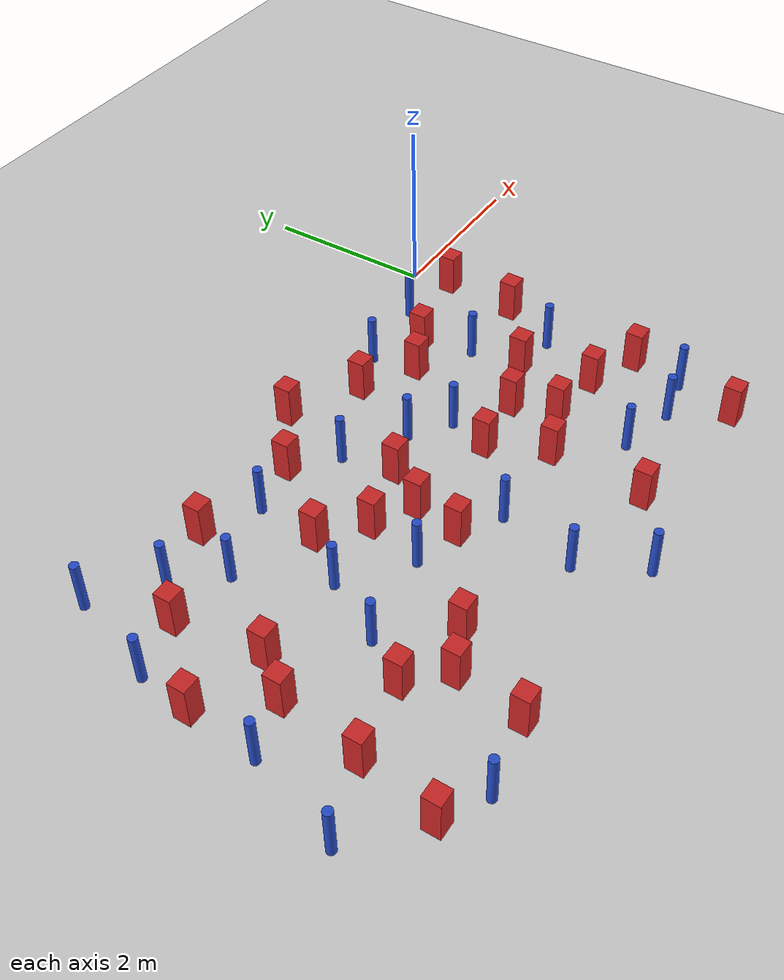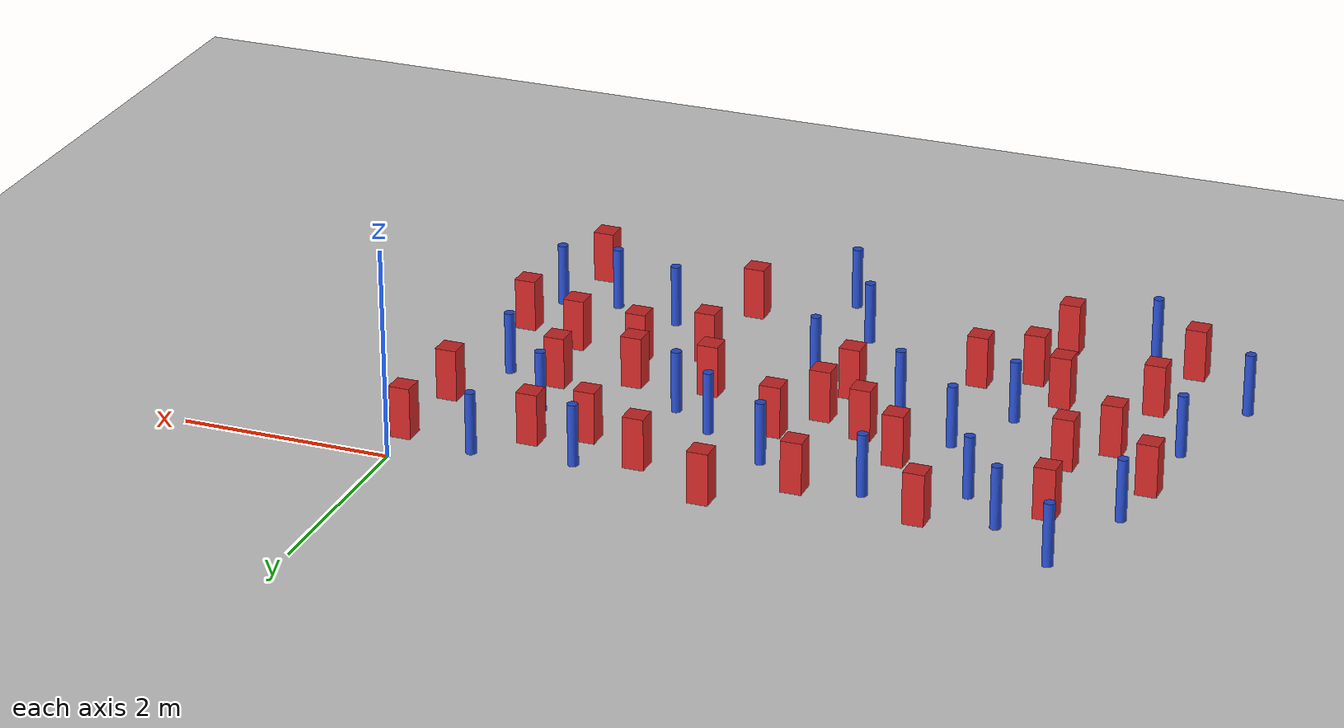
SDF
<sdf version="1.6">
 <world name="default">
  <model name="ground_plane">
   <static>1</static>
   <link name="link">
    <collision name="collision">
     <geometry><plane><normal>0 0 1</normal><size>100 100</size></plane></geometry>
     <surface><friction><ode><mu>100</mu><mu2>50</mu2></ode></friction></surface>
    </collision>
    <visual name="visual">
     <cast_shadows>0</cast_shadows>
     <geometry><plane><normal>0 0 1</normal><size>100 100</size></plane></geometry>
     <material>
      <ambient>1.0 1.0 1.0 1.0</ambient>
      <diffuse>0.8 0.8 0.8 1.0</diffuse>
      <specular>0.01 0.01 0.01 1.000000</specular>
     </material>
    </visual>
   </link>
  </model>
  <model name="NamedLocations">
   <static>true</static>
   <link name="DefaultStart"><pose>8.5 0 0 0 0 3.14</pose></link>
  </model>
  <model name="pole_obstacle1">
   <static>true</static>
   <pose>-3.19911717233 -3.85749164379 -9.47619616065e-06 5.49618799737e-07 2.36310414067e-07 -1.55090534797e-07</pose>
   <link name="link">
    <pose>0 0 0.3 0 -0 0</pose>
    <inertial>
     <mass>1</mass>
     <inertia><ixx>0.145833</ixx><ixy>0</ixy><ixz>0</ixz><iyy>0.145833</iyy><iyz>0</iyz><izz>0.125</izz></inertia>
    </inertial>
    <collision name="collision">
     <geometry><cylinder><radius>0.05</radius><length>.6</length></cylinder></geometry>
    </collision>
    <visual name="visual">
     <geometry><cylinder><radius>0.05</radius><length>.6</length></cylinder></geometry>
     <material>
      <script><name>Gazebo/Blue</name><uri>file://media/materials/scripts/gazebo.material</uri></script>
     </material>
    </visual>
   </link>
  </model>
  <model name="square_post_obstacle28">
   <static>true</static>
   <pose>-0.0765673904585 -3.0352281783 -6.11067671241e-07 -5.50515727128e-06 -8.79689657224e-07 2.37013304536e-05</pose>
   <link name="link">
    <pose>0 0 0.25 0 -0 0</pose>
    <inertial>
     <mass>100</mass>
     <inertia>
      <ixx>0.166667</ixx>
      <ixy>0</ixy>
      <ixz>0</ixz>
      <iyy>0.166667</iyy>
      <iyz>0</iyz>
      <izz>0.166667</izz>
     </inertia>
    </inertial>
    <collision name="collision"><geometry><box><size>.2 .2 .5</size></box></geometry></collision>
    <visual name="visual">
     <geometry><box><size>.2 .2 .5</size></box></geometry>
     <material>
      <script><name>Gazebo/Red</name><uri>file://media/materials/scripts/gazebo.material</uri></script>
     </material>
    </visual>
   </link>
  </model>
  <model name="pole_obstacle39">
   <static>true</static>
   <pose>-0.702254688312 -3.73534514934 -9.47619616065e-06 5.49618799737e-07 2.36310414066e-07 -1.55090534797e-07</pose>
   <link name="link">
    <pose>0 0 0.3 0 -0 0</pose>
    <inertial>
     <mass>1</mass>
     <inertia><ixx>0.145833</ixx><ixy>0</ixy><ixz>0</ixz><iyy>0.145833</iyy><iyz>0</iyz><izz>0.125</izz></inertia>
    </inertial>
    <collision name="collision">
     <geometry><cylinder><radius>0.05</radius><length>.6</length></cylinder></geometry>
    </collision>
    <visual name="visual">
     <geometry><cylinder><radius>0.05</radius><length>.6</length></cylinder></geometry>
     <material>
      <script><name>Gazebo/Blue</name><uri>file://media/materials/scripts/gazebo.material</uri></script>
     </material>
    </visual>
   </link>
  </model>
  <model name="square_post_obstacle36">
   <static>true</static>
   <pose>-6.12231730067 -3.36543275343 -6.11067671241e-07 -5.50515727128e-06 -8.79689657224e-07 2.37013304536e-05</pose>
   <link name="link">
    <pose>0 0 0.25 0 -0 0</pose>
    <inertial>
     <mass>100</mass>
     <inertia>
      <ixx>0.166667</ixx>
      <ixy>0</ixy>
      <ixz>0</ixz>
      <iyy>0.166667</iyy>
      <iyz>0</iyz>
      <izz>0.166667</izz>
     </inertia>
    </inertial>
    <collision name="collision"><geometry><box><size>.2 .2 .5</size></box></geometry></collision>
    <visual name="visual">
     <geometry><box><size>.2 .2 .5</size></box></geometry>
     <material>
      <script><name>Gazebo/Red</name><uri>file://media/materials/scripts/gazebo.material</uri></script>
     </material>
    </visual>
   </link>
  </model>
  <model name="pole_obstacle51">
   <static>true</static>
   <pose>-2.48263366427 -1.49886465993 -9.47619616065e-06 5.49618799737e-07 2.36310414072e-07 -1.55090534793e-07</pose>
   <link name="link">
    <pose>0 0 0.3 0 -0 0</pose>
    <inertial>
     <mass>1</mass>
     <inertia><ixx>0.145833</ixx><ixy>0</ixy><ixz>0</ixz><iyy>0.145833</iyy><iyz>0</iyz><izz>0.125</izz></inertia>
    </inertial>
    <collision name="collision">
     <geometry><cylinder><radius>0.05</radius><length>.6</length></cylinder></geometry>
    </collision>
    <visual name="visual">
     <geometry><cylinder><radius>0.05</radius><length>.6</length></cylinder></geometry>
     <material>
      <script><name>Gazebo/Blue</name><uri>file://media/materials/scripts/gazebo.material</uri></script>
     </material>
    </visual>
   </link>
  </model>
  <model name="pole_obstacle53">
   <static>true</static>
   <pose>-0.175099441439 -3.63670698997 -9.47619616065e-06 5.49618799738e-07 2.36310414068e-07 -1.55090534794e-07</pose>
   <link name="link">
    <pose>0 0 0.3 0 -0 0</pose>
    <inertial>
     <mass>1</mass>
     <inertia><ixx>0.145833</ixx><ixy>0</ixy><ixz>0</ixz><iyy>0.145833</iyy><iyz>0</iyz><izz>0.125</izz></inertia>
    </inertial>
    <collision name="collision">
     <geometry><cylinder><radius>0.05</radius><length>.6</length></cylinder></geometry>
    </collision>
    <visual name="visual">
     <geometry><cylinder><radius>0.05</radius><length>.6</length></cylinder></geometry>
     <material>
      <script><name>Gazebo/Blue</name><uri>file://media/materials/scripts/gazebo.material</uri></script>
     </material>
    </visual>
   </link>
  </model>
  <model name="pole_obstacle59">
   <static>true</static>
   <pose>-3.13419459862 -1.08942713452 -9.47619616065e-06 5.49618799737e-07 2.3631041403e-07 -1.5509053482e-07</pose>
   <link name="link">
    <pose>0 0 0.3 0 -0 0</pose>
    <inertial>
     <mass>1</mass>
     <inertia><ixx>0.145833</ixx><ixy>0</ixy><ixz>0</ixz><iyy>0.145833</iyy><iyz>0</iyz><izz>0.125</izz></inertia>
    </inertial>
    <collision name="collision">
     <geometry><cylinder><radius>0.05</radius><length>.6</length></cylinder></geometry>
    </collision>
    <visual name="visual">
     <geometry><cylinder><radius>0.05</radius><length>.6</length></cylinder></geometry>
     <material>
      <script><name>Gazebo/Blue</name><uri>file://media/materials/scripts/gazebo.material</uri></script>
     </material>
    </visual>
   </link>
  </model>
  <model name="pole_obstacle62">
   <static>true</static>
   <pose>-2.97303971889 -2.97368867425 -9.47619616065e-06 5.49618799737e-07 2.36310414051e-07 -1.55090534807e-07</pose>
   <link name="link">
    <pose>0 0 0.3 0 -0 0</pose>
    <inertial>
     <mass>1</mass>
     <inertia><ixx>0.145833</ixx><ixy>0</ixy><ixz>0</ixz><iyy>0.145833</iyy><iyz>0</iyz><izz>0.125</izz></inertia>
    </inertial>
    <collision name="collision">
     <geometry><cylinder><radius>0.05</radius><length>.6</length></cylinder></geometry>
    </collision>
    <visual name="visual">
     <geometry><cylinder><radius>0.05</radius><length>.6</length></cylinder></geometry>
     <material>
      <script><name>Gazebo/Blue</name><uri>file://media/materials/scripts/gazebo.material</uri></script>
     </material>
    </visual>
   </link>
  </model>
  <model name="square_post_obstacle48">
   <static>true</static>
   <pose>-5.2789431637 -3.21383646122 -6.11067671241e-07 -5.50515727128e-06 -8.79689657224e-07 2.37013304536e-05</pose>
   <link name="link">
    <pose>0 0 0.25 0 -0 0</pose>
    <inertial>
     <mass>100</mass>
     <inertia>
      <ixx>0.166667</ixx>
      <ixy>0</ixy>
      <ixz>0</ixz>
      <iyy>0.166667</iyy>
      <iyz>0</iyz>
      <izz>0.166667</izz>
     </inertia>
    </inertial>
    <collision name="collision"><geometry><box><size>.2 .2 .5</size></box></geometry></collision>
    <visual name="visual">
     <geometry><box><size>.2 .2 .5</size></box></geometry>
     <material>
      <script><name>Gazebo/Red</name><uri>file://media/materials/scripts/gazebo.material</uri></script>
     </material>
    </visual>
   </link>
  </model>
  <model name="square_post_obstacle50">
   <static>true</static>
   <pose>-3.33939421708 -2.16805434983 -6.11067671241e-07 -5.50515727128e-06 -8.79689657224e-07 2.37013304536e-05</pose>
   <link name="link">
    <pose>0 0 0.25 0 -0 0</pose>
    <inertial>
     <mass>100</mass>
     <inertia>
      <ixx>0.166667</ixx>
      <ixy>0</ixy>
      <ixz>0</ixz>
      <iyy>0.166667</iyy>
      <iyz>0</iyz>
      <izz>0.166667</izz>
     </inertia>
    </inertial>
    <collision name="collision"><geometry><box><size>.2 .2 .5</size></box></geometry></collision>
    <visual name="visual">
     <geometry><box><size>.2 .2 .5</size></box></geometry>
     <material>
      <script><name>Gazebo/Red</name><uri>file://media/materials/scripts/gazebo.material</uri></script>
     </material>
    </visual>
   </link>
  </model>
  <model name="square_post_obstacle54">
   <static>true</static>
   <pose>-1.99470783753 -4.05899815633 -6.11067671241e-07 -5.50515727128e-06 -8.79689657224e-07 2.37013304536e-05</pose>
   <link name="link">
    <pose>0 0 0.25 0 -0 0</pose>
    <inertial>
     <mass>100</mass>
     <inertia>
      <ixx>0.166667</ixx>
      <ixy>0</ixy>
      <ixz>0</ixz>
      <iyy>0.166667</iyy>
      <iyz>0</iyz>
      <izz>0.166667</izz>
     </inertia>
    </inertial>
    <collision name="collision"><geometry><box><size>.2 .2 .5</size></box></geometry></collision>
    <visual name="visual">
     <geometry><box><size>.2 .2 .5</size></box></geometry>
     <material>
      <script><name>Gazebo/Red</name><uri>file://media/materials/scripts/gazebo.material</uri></script>
     </material>
    </visual>
   </link>
  </model>
  <model name="square_post_obstacle56">
   <static>true</static>
   <pose>-6.50431395539 -1.78588059639 -6.11067671241e-07 -5.50515727128e-06 -8.79689657224e-07 2.37013304536e-05</pose>
   <link name="link">
    <pose>0 0 0.25 0 -0 0</pose>
    <inertial>
     <mass>100</mass>
     <inertia>
      <ixx>0.166667</ixx>
      <ixy>0</ixy>
      <ixz>0</ixz>
      <iyy>0.166667</iyy>
      <iyz>0</iyz>
      <izz>0.166667</izz>
     </inertia>
    </inertial>
    <collision name="collision"><geometry><box><size>.2 .2 .5</size></box></geometry></collision>
    <visual name="visual">
     <geometry><box><size>.2 .2 .5</size></box></geometry>
     <material>
      <script><name>Gazebo/Red</name><uri>file://media/materials/scripts/gazebo.material</uri></script>
     </material>
    </visual>
   </link>
  </model>
  <model name="square_post_obstacle57">
   <static>true</static>
   <pose>-2.20268461764 -2.29510537021 -6.11067671241e-07 -5.50515727128e-06 -8.79689657224e-07 2.37013304536e-05</pose>
   <link name="link">
    <pose>0 0 0.25 0 -0 0</pose>
    <inertial>
     <mass>100</mass>
     <inertia>
      <ixx>0.166667</ixx>
      <ixy>0</ixy>
      <ixz>0</ixz>
      <iyy>0.166667</iyy>
      <iyz>0</iyz>
      <izz>0.166667</izz>
     </inertia>
    </inertial>
    <collision name="collision"><geometry><box><size>.2 .2 .5</size></box></geometry></collision>
    <visual name="visual">
     <geometry><box><size>.2 .2 .5</size></box></geometry>
     <material>
      <script><name>Gazebo/Red</name><uri>file://media/materials/scripts/gazebo.material</uri></script>
     </material>
    </visual>
   </link>
  </model>
  <model name="pole_obstacle71">
   <static>true</static>
   <pose>-1.3604966043 -3.56582772168 -9.47619616065e-06 5.49618799737e-07 2.36310414062e-07 -1.55090534798e-07</pose>
   <link name="link">
    <pose>0 0 0.3 0 -0 0</pose>
    <inertial>
     <mass>1</mass>
     <inertia><ixx>0.145833</ixx><ixy>0</ixy><ixz>0</ixz><iyy>0.145833</iyy><iyz>0</iyz><izz>0.125</izz></inertia>
    </inertial>
    <collision name="collision">
     <geometry><cylinder><radius>0.05</radius><length>.6</length></cylinder></geometry>
    </collision>
    <visual name="visual">
     <geometry><cylinder><radius>0.05</radius><length>.6</length></cylinder></geometry>
     <material>
      <script><name>Gazebo/Blue</name><uri>file://media/materials/scripts/gazebo.material</uri></script>
     </material>
    </visual>
   </link>
  </model>
  <model name="square_post_obstacle63">
   <static>true</static>
   <pose>-2.12990914501 -0.656591872403 -6.11067671241e-07 -5.50515727128e-06 -8.79689657224e-07 2.37013304536e-05</pose>
   <link name="link">
    <pose>0 0 0.25 0 -0 0</pose>
    <inertial>
     <mass>100</mass>
     <inertia>
      <ixx>0.166667</ixx>
      <ixy>0</ixy>
      <ixz>0</ixz>
      <iyy>0.166667</iyy>
      <iyz>0</iyz>
      <izz>0.166667</izz>
     </inertia>
    </inertial>
    <collision name="collision"><geometry><box><size>.2 .2 .5</size></box></geometry></collision>
    <visual name="visual">
     <geometry><box><size>.2 .2 .5</size></box></geometry>
     <material>
      <script><name>Gazebo/Red</name><uri>file://media/materials/scripts/gazebo.material</uri></script>
     </material>
    </visual>
   </link>
  </model>
  <model name="square_post_obstacle65">
   <static>true</static>
   <pose>-4.43909895062 -3.37051750429 -6.11067671241e-07 -5.50515727128e-06 -8.79689657224e-07 2.37013304536e-05</pose>
   <link name="link">
    <pose>0 0 0.25 0 -0 0</pose>
    <inertial>
     <mass>100</mass>
     <inertia>
      <ixx>0.166667</ixx>
      <ixy>0</ixy>
      <ixz>0</ixz>
      <iyy>0.166667</iyy>
      <iyz>0</iyz>
      <izz>0.166667</izz>
     </inertia>
    </inertial>
    <collision name="collision"><geometry><box><size>.2 .2 .5</size></box></geometry></collision>
    <visual name="visual">
     <geometry><box><size>.2 .2 .5</size></box></geometry>
     <material>
      <script><name>Gazebo/Red</name><uri>file://media/materials/scripts/gazebo.material</uri></script>
     </material>
    </visual>
   </link>
  </model>
  <model name="pole_obstacle93">
   <static>true</static>
   <pose>-4.60861516715 -2.02784647818 -9.47619616065e-06 5.49618799737e-07 2.36310414063e-07 -1.55090534798e-07</pose>
   <link name="link">
    <pose>0 0 0.3 0 -0 0</pose>
    <inertial>
     <mass>1</mass>
     <inertia><ixx>0.145833</ixx><ixy>0</ixy><ixz>0</ixz><iyy>0.145833</iyy><iyz>0</iyz><izz>0.125</izz></inertia>
    </inertial>
    <collision name="collision">
     <geometry><cylinder><radius>0.05</radius><length>.6</length></cylinder></geometry>
    </collision>
    <visual name="visual">
     <geometry><cylinder><radius>0.05</radius><length>.6</length></cylinder></geometry>
     <material>
      <script><name>Gazebo/Blue</name><uri>file://media/materials/scripts/gazebo.material</uri></script>
     </material>
    </visual>
   </link>
  </model>
  <model name="pole_obstacle95">
   <static>true</static>
   <pose>-4.98050670541 -2.71557921643 -9.47619616065e-06 5.49618799738e-07 2.36310414051e-07 -1.55090534805e-07</pose>
   <link name="link">
    <pose>0 0 0.3 0 -0 0</pose>
    <inertial>
     <mass>1</mass>
     <inertia><ixx>0.145833</ixx><ixy>0</ixy><ixz>0</ixz><iyy>0.145833</iyy><iyz>0</iyz><izz>0.125</izz></inertia>
    </inertial>
    <collision name="collision">
     <geometry><cylinder><radius>0.05</radius><length>.6</length></cylinder></geometry>
    </collision>
    <visual name="visual">
     <geometry><cylinder><radius>0.05</radius><length>.6</length></cylinder></geometry>
     <material>
      <script><name>Gazebo/Blue</name><uri>file://media/materials/scripts/gazebo.material</uri></script>
     </material>
    </visual>
   </link>
  </model>
  <model name="square_post_obstacle91">
   <static>true</static>
   <pose>-6.26693419469 -4.23225692589 -6.11067671241e-07 -5.50515727128e-06 -8.79689657224e-07 2.37013304536e-05</pose>
   <link name="link">
    <pose>0 0 0.25 0 -0 0</pose>
    <inertial>
     <mass>100</mass>
     <inertia>
      <ixx>0.166667</ixx>
      <ixy>0</ixy>
      <ixz>0</ixz>
      <iyy>0.166667</iyy>
      <iyz>0</iyz>
      <izz>0.166667</izz>
     </inertia>
    </inertial>
    <collision name="collision"><geometry><box><size>.2 .2 .5</size></box></geometry></collision>
    <visual name="visual">
     <geometry><box><size>.2 .2 .5</size></box></geometry>
     <material>
      <script><name>Gazebo/Red</name><uri>file://media/materials/scripts/gazebo.material</uri></script>
     </material>
    </visual>
   </link>
  </model>
  <model name="pole_obstacle101">
   <static>true</static>
   <pose>-0.906125554442 -1.36196804344 -9.47619616065e-06 5.49618799738e-07 2.36310414061e-07 -1.55090534801e-07</pose>
   <link name="link">
    <pose>0 0 0.3 0 -0 0</pose>
    <inertial>
     <mass>1</mass>
     <inertia><ixx>0.145833</ixx><ixy>0</ixy><ixz>0</ixz><iyy>0.145833</iyy><iyz>0</iyz><izz>0.125</izz></inertia>
    </inertial>
    <collision name="collision">
     <geometry><cylinder><radius>0.05</radius><length>.6</length></cylinder></geometry>
    </collision>
    <visual name="visual">
     <geometry><cylinder><radius>0.05</radius><length>.6</length></cylinder></geometry>
     <material>
      <script><name>Gazebo/Blue</name><uri>file://media/materials/scripts/gazebo.material</uri></script>
     </material>
    </visual>
   </link>
  </model>
  <model name="pole_obstacle102">
   <static>true</static>
   <pose>-2.05232454999 -1.81158251373 -9.47619616065e-06 5.49618799737e-07 2.36310414072e-07 -1.55090534793e-07</pose>
   <link name="link">
    <pose>0 0 0.3 0 -0 0</pose>
    <inertial>
     <mass>1</mass>
     <inertia><ixx>0.145833</ixx><ixy>0</ixy><ixz>0</ixz><iyy>0.145833</iyy><iyz>0</iyz><izz>0.125</izz></inertia>
    </inertial>
    <collision name="collision">
     <geometry><cylinder><radius>0.05</radius><length>.6</length></cylinder></geometry>
    </collision>
    <visual name="visual">
     <geometry><cylinder><radius>0.05</radius><length>.6</length></cylinder></geometry>
     <material>
      <script><name>Gazebo/Blue</name><uri>file://media/materials/scripts/gazebo.material</uri></script>
     </material>
    </visual>
   </link>
  </model>
  <model name="square_post_obstacle101">
   <static>true</static>
   <pose>-0.00956908854837 -1.3630179235 -6.11067671241e-07 -5.50515727128e-06 -8.79689657224e-07 2.37013304536e-05</pose>
   <link name="link">
    <pose>0 0 0.25 0 -0 0</pose>
    <inertial>
     <mass>100</mass>
     <inertia>
      <ixx>0.166667</ixx>
      <ixy>0</ixy>
      <ixz>0</ixz>
      <iyy>0.166667</iyy>
      <iyz>0</iyz>
      <izz>0.166667</izz>
     </inertia>
    </inertial>
    <collision name="collision"><geometry><box><size>.2 .2 .5</size></box></geometry></collision>
    <visual name="visual">
     <geometry><box><size>.2 .2 .5</size></box></geometry>
     <material>
      <script><name>Gazebo/Red</name><uri>file://media/materials/scripts/gazebo.material</uri></script>
     </material>
    </visual>
   </link>
  </model>
  <model name="square_post_obstacle111">
   <static>true</static>
   <pose>-5.6695432048 -2.00963299749 -6.11067671241e-07 -5.50515727128e-06 -8.79689657224e-07 2.37013304536e-05</pose>
   <link name="link">
    <pose>0 0 0.25 0 -0 0</pose>
    <inertial>
     <mass>100</mass>
     <inertia>
      <ixx>0.166667</ixx>
      <ixy>0</ixy>
      <ixz>0</ixz>
      <iyy>0.166667</iyy>
      <iyz>0</iyz>
      <izz>0.166667</izz>
     </inertia>
    </inertial>
    <collision name="collision"><geometry><box><size>.2 .2 .5</size></box></geometry></collision>
    <visual name="visual">
     <geometry><box><size>.2 .2 .5</size></box></geometry>
     <material>
      <script><name>Gazebo/Red</name><uri>file://media/materials/scripts/gazebo.material</uri></script>
     </material>
    </visual>
   </link>
  </model>
  <model name="square_post_obstacle112">
   <static>true</static>
   <pose>0.0521442033114 -0.484607873378 -6.11067671241e-07 -5.50515727128e-06 -8.79689657224e-07 2.37013304536e-05</pose>
   <link name="link">
    <pose>0 0 0.25 0 -0 0</pose>
    <inertial>
     <mass>100</mass>
     <inertia>
      <ixx>0.166667</ixx>
      <ixy>0</ixy>
      <ixz>0</ixz>
      <iyy>0.166667</iyy>
      <iyz>0</iyz>
      <izz>0.166667</izz>
     </inertia>
    </inertial>
    <collision name="collision"><geometry><box><size>.2 .2 .5</size></box></geometry></collision>
    <visual name="visual">
     <geometry><box><size>.2 .2 .5</size></box></geometry>
     <material>
      <script><name>Gazebo/Red</name><uri>file://media/materials/scripts/gazebo.material</uri></script>
     </material>
    </visual>
   </link>
  </model>
  <model name="square_post_obstacle118">
   <static>true</static>
   <pose>-1.92234730934 -2.95369206804 -6.11067671241e-07 -5.50515727128e-06 -8.79689657224e-07 2.37013304536e-05</pose>
   <link name="link">
    <pose>0 0 0.25 0 -0 0</pose>
    <inertial>
     <mass>100</mass>
     <inertia>
      <ixx>0.166667</ixx>
      <ixy>0</ixy>
      <ixz>0</ixz>
      <iyy>0.166667</iyy>
      <iyz>0</iyz>
      <izz>0.166667</izz>
     </inertia>
    </inertial>
    <collision name="collision"><geometry><box><size>.2 .2 .5</size></box></geometry></collision>
    <visual name="visual">
     <geometry><box><size>.2 .2 .5</size></box></geometry>
     <material>
      <script><name>Gazebo/Red</name><uri>file://media/materials/scripts/gazebo.material</uri></script>
     </material>
    </visual>
   </link>
  </model>
  <model name="pole_obstacle118">
   <static>true</static>
   <pose>-5.46044756523 -0.648077877743 -9.47619616065e-06 5.49618799737e-07 2.36310414061e-07 -1.550905348e-07</pose>
   <link name="link">
    <pose>0 0 0.3 0 -0 0</pose>
    <inertial>
     <mass>1</mass>
     <inertia><ixx>0.145833</ixx><ixy>0</ixy><ixz>0</ixz><iyy>0.145833</iyy><iyz>0</iyz><izz>0.125</izz></inertia>
    </inertial>
    <collision name="collision">
     <geometry><cylinder><radius>0.05</radius><length>.6</length></cylinder></geometry>
    </collision>
    <visual name="visual">
     <geometry><cylinder><radius>0.05</radius><length>.6</length></cylinder></geometry>
     <material>
      <script><name>Gazebo/Blue</name><uri>file://media/materials/scripts/gazebo.material</uri></script>
     </material>
    </visual>
   </link>
  </model>
  <model name="square_post_obstacle119">
   <static>true</static>
   <pose>-4.24734267214 -1.53987809957 -6.11067671241e-07 -5.50515727128e-06 -8.79689657224e-07 2.37013304536e-05</pose>
   <link name="link">
    <pose>0 0 0.25 0 -0 0</pose>
    <inertial>
     <mass>100</mass>
     <inertia>
      <ixx>0.166667</ixx>
      <ixy>0</ixy>
      <ixz>0</ixz>
      <iyy>0.166667</iyy>
      <iyz>0</iyz>
      <izz>0.166667</izz>
     </inertia>
    </inertial>
    <collision name="collision"><geometry><box><size>.2 .2 .5</size></box></geometry></collision>
    <visual name="visual">
     <geometry><box><size>.2 .2 .5</size></box></geometry>
     <material>
      <script><name>Gazebo/Red</name><uri>file://media/materials/scripts/gazebo.material</uri></script>
     </material>
    </visual>
   </link>
  </model>
  <model name="pole_obstacle124">
   <static>true</static>
   <pose>-3.94350989885 -2.5544110423 -9.47619616065e-06 5.49618799737e-07 2.36310414051e-07 -1.55090534807e-07</pose>
   <link name="link">
    <pose>0 0 0.3 0 -0 0</pose>
    <inertial>
     <mass>1</mass>
     <inertia><ixx>0.145833</ixx><ixy>0</ixy><ixz>0</ixz><iyy>0.145833</iyy><iyz>0</iyz><izz>0.125</izz></inertia>
    </inertial>
    <collision name="collision">
     <geometry><cylinder><radius>0.05</radius><length>.6</length></cylinder></geometry>
    </collision>
    <visual name="visual">
     <geometry><cylinder><radius>0.05</radius><length>.6</length></cylinder></geometry>
     <material>
      <script><name>Gazebo/Blue</name><uri>file://media/materials/scripts/gazebo.material</uri></script>
     </material>
    </visual>
   </link>
  </model>
  <model name="pole_obstacle128">
   <static>true</static>
   <pose>-6.91409753082 -3.61974826163 -9.47619616065e-06 5.49618799738e-07 2.36310414051e-07 -1.55090534805e-07</pose>
   <link name="link">
    <pose>0 0 0.3 0 -0 0</pose>
    <inertial>
     <mass>1</mass>
     <inertia><ixx>0.145833</ixx><ixy>0</ixy><ixz>0</ixz><iyy>0.145833</iyy><iyz>0</iyz><izz>0.125</izz></inertia>
    </inertial>
    <collision name="collision">
     <geometry><cylinder><radius>0.05</radius><length>.6</length></cylinder></geometry>
    </collision>
    <visual name="visual">
     <geometry><cylinder><radius>0.05</radius><length>.6</length></cylinder></geometry>
     <material>
      <script><name>Gazebo/Blue</name><uri>file://media/materials/scripts/gazebo.material</uri></script>
     </material>
    </visual>
   </link>
  </model>
  <model name="square_post_obstacle125">
   <static>true</static>
   <pose>-1.32543286733 -2.70964911386 -6.11067671241e-07 -5.50515727128e-06 -8.79689657224e-07 2.37013304536e-05</pose>
   <link name="link">
    <pose>0 0 0.25 0 -0 0</pose>
    <inertial>
     <mass>100</mass>
     <inertia>
      <ixx>0.166667</ixx>
      <ixy>0</ixy>
      <ixz>0</ixz>
      <iyy>0.166667</iyy>
      <iyz>0</iyz>
      <izz>0.166667</izz>
     </inertia>
    </inertial>
    <collision name="collision"><geometry><box><size>.2 .2 .5</size></box></geometry></collision>
    <visual name="visual">
     <geometry><box><size>.2 .2 .5</size></box></geometry>
     <material>
      <script><name>Gazebo/Red</name><uri>file://media/materials/scripts/gazebo.material</uri></script>
     </material>
    </visual>
   </link>
  </model>
  <model name="square_post_obstacle128">
   <static>true</static>
   <pose>-1.06012192529 -0.775678178662 -6.11067671241e-07 -5.50515727128e-06 -8.79689657224e-07 2.37013304536e-05</pose>
   <link name="link">
    <pose>0 0 0.25 0 -0 0</pose>
    <inertial>
     <mass>100</mass>
     <inertia>
      <ixx>0.166667</ixx>
      <ixy>0</ixy>
      <ixz>0</ixz>
      <iyy>0.166667</iyy>
      <iyz>0</iyz>
      <izz>0.166667</izz>
     </inertia>
    </inertial>
    <collision name="collision"><geometry><box><size>.2 .2 .5</size></box></geometry></collision>
    <visual name="visual">
     <geometry><box><size>.2 .2 .5</size></box></geometry>
     <material>
      <script><name>Gazebo/Red</name><uri>file://media/materials/scripts/gazebo.material</uri></script>
     </material>
    </visual>
   </link>
  </model>
  <model name="square_post_obstacle133">
   <static>true</static>
   <pose>-0.824824934856 -1.95908457289 -6.11067671241e-07 -5.50515727128e-06 -8.79689657224e-07 2.37013304536e-05</pose>
   <link name="link">
    <pose>0 0 0.25 0 -0 0</pose>
    <inertial>
     <mass>100</mass>
     <inertia>
      <ixx>0.166667</ixx>
      <ixy>0</ixy>
      <ixz>0</ixz>
      <iyy>0.166667</iyy>
      <iyz>0</iyz>
      <izz>0.166667</izz>
     </inertia>
    </inertial>
    <collision name="collision"><geometry><box><size>.2 .2 .5</size></box></geometry></collision>
    <visual name="visual">
     <geometry><box><size>.2 .2 .5</size></box></geometry>
     <material>
      <script><name>Gazebo/Red</name><uri>file://media/materials/scripts/gazebo.material</uri></script>
     </material>
    </visual>
   </link>
  </model>
  <model name="square_post_obstacle135">
   <static>true</static>
   <pose>-5.80324776748 -1.02915440302 -6.11067671241e-07 -5.50515727128e-06 -8.79689657224e-07 2.37013304536e-05</pose>
   <link name="link">
    <pose>0 0 0.25 0 -0 0</pose>
    <inertial>
     <mass>100</mass>
     <inertia>
      <ixx>0.166667</ixx>
      <ixy>0</ixy>
      <ixz>0</ixz>
      <iyy>0.166667</iyy>
      <iyz>0</iyz>
      <izz>0.166667</izz>
     </inertia>
    </inertial>
    <collision name="collision"><geometry><box><size>.2 .2 .5</size></box></geometry></collision>
    <visual name="visual">
     <geometry><box><size>.2 .2 .5</size></box></geometry>
     <material>
      <script><name>Gazebo/Red</name><uri>file://media/materials/scripts/gazebo.material</uri></script>
     </material>
    </visual>
   </link>
  </model>
  <model name="square_post_obstacle139">
   <static>true</static>
   <pose>-3.02881620892 -1.70288535142 -6.11067671241e-07 -5.50515727128e-06 -8.79689657224e-07 2.37013304536e-05</pose>
   <link name="link">
    <pose>0 0 0.25 0 -0 0</pose>
    <inertial>
     <mass>100</mass>
     <inertia>
      <ixx>0.166667</ixx>
      <ixy>0</ixy>
      <ixz>0</ixz>
      <iyy>0.166667</iyy>
      <iyz>0</iyz>
      <izz>0.166667</izz>
     </inertia>
    </inertial>
    <collision name="collision"><geometry><box><size>.2 .2 .5</size></box></geometry></collision>
    <visual name="visual">
     <geometry><box><size>.2 .2 .5</size></box></geometry>
     <material>
      <script><name>Gazebo/Red</name><uri>file://media/materials/scripts/gazebo.material</uri></script>
     </material>
    </visual>
   </link>
  </model>
  <model name="pole_obstacle145">
   <static>true</static>
   <pose>-0.315778922674 -2.03053918859 -9.47619616065e-06 5.49618799737e-07 2.36310414053e-07 -1.55090534804e-07</pose>
   <link name="link">
    <pose>0 0 0.3 0 -0 0</pose>
    <inertial>
     <mass>1</mass>
     <inertia><ixx>0.145833</ixx><ixy>0</ixy><ixz>0</ixz><iyy>0.145833</iyy><iyz>0</iyz><izz>0.125</izz></inertia>
    </inertial>
    <collision name="collision">
     <geometry><cylinder><radius>0.05</radius><length>.6</length></cylinder></geometry>
    </collision>
    <visual name="visual">
     <geometry><cylinder><radius>0.05</radius><length>.6</length></cylinder></geometry>
     <material>
      <script><name>Gazebo/Blue</name><uri>file://media/materials/scripts/gazebo.material</uri></script>
     </material>
    </visual>
   </link>
  </model>
  <model name="pole_obstacle151">
   <static>true</static>
   <pose>-4.18180727217 -0.821402644132 -9.47619616065e-06 5.49618799737e-07 2.36310414061e-07 -1.550905348e-07</pose>
   <link name="link">
    <pose>0 0 0.3 0 -0 0</pose>
    <inertial>
     <mass>1</mass>
     <inertia><ixx>0.145833</ixx><ixy>0</ixy><ixz>0</ixz><iyy>0.145833</iyy><iyz>0</iyz><izz>0.125</izz></inertia>
    </inertial>
    <collision name="collision">
     <geometry><cylinder><radius>0.05</radius><length>.6</length></cylinder></geometry>
    </collision>
    <visual name="visual">
     <geometry><cylinder><radius>0.05</radius><length>.6</length></cylinder></geometry>
     <material>
      <script><name>Gazebo/Blue</name><uri>file://media/materials/scripts/gazebo.material</uri></script>
     </material>
    </visual>
   </link>
  </model>
  <model name="square_post_obstacle145">
   <static>true</static>
   <pose>-0.673118358197 -2.78650238808 -6.11067671241e-07 -5.50515727128e-06 -8.79689657224e-07 2.37013304536e-05</pose>
   <link name="link">
    <pose>0 0 0.25 0 -0 0</pose>
    <inertial>
     <mass>100</mass>
     <inertia>
      <ixx>0.166667</ixx>
      <ixy>0</ixy>
      <ixz>0</ixz>
      <iyy>0.166667</iyy>
      <iyz>0</iyz>
      <izz>0.166667</izz>
     </inertia>
    </inertial>
    <collision name="collision"><geometry><box><size>.2 .2 .5</size></box></geometry></collision>
    <visual name="visual">
     <geometry><box><size>.2 .2 .5</size></box></geometry>
     <material>
      <script><name>Gazebo/Red</name><uri>file://media/materials/scripts/gazebo.material</uri></script>
     </material>
    </visual>
   </link>
  </model>
  <model name="square_post_obstacle148">
   <static>true</static>
   <pose>-5.02166538886 -4.3528258219 -6.11067671241e-07 -5.50515727128e-06 -8.79689657224e-07 2.37013304536e-05</pose>
   <link name="link">
    <pose>0 0 0.25 0 -0 0</pose>
    <inertial>
     <mass>100</mass>
     <inertia>
      <ixx>0.166667</ixx>
      <ixy>0</ixy>
      <ixz>0</ixz>
      <iyy>0.166667</iyy>
      <iyz>0</iyz>
      <izz>0.166667</izz>
     </inertia>
    </inertial>
    <collision name="collision"><geometry><box><size>.2 .2 .5</size></box></geometry></collision>
    <visual name="visual">
     <geometry><box><size>.2 .2 .5</size></box></geometry>
     <material>
      <script><name>Gazebo/Red</name><uri>file://media/materials/scripts/gazebo.material</uri></script>
     </material>
    </visual>
   </link>
  </model>
  <model name="pole_obstacle155">
   <static>true</static>
   <pose>-6.57364154274 -2.57959715795 -9.47619616065e-06 5.49618799738e-07 2.36310414051e-07 -1.55090534805e-07</pose>
   <link name="link">
    <pose>0 0 0.3 0 -0 0</pose>
    <inertial>
     <mass>1</mass>
     <inertia><ixx>0.145833</ixx><ixy>0</ixy><ixz>0</ixz><iyy>0.145833</iyy><iyz>0</iyz><izz>0.125</izz></inertia>
    </inertial>
    <collision name="collision">
     <geometry><cylinder><radius>0.05</radius><length>.6</length></cylinder></geometry>
    </collision>
    <visual name="visual">
     <geometry><cylinder><radius>0.05</radius><length>.6</length></cylinder></geometry>
     <material>
      <script><name>Gazebo/Blue</name><uri>file://media/materials/scripts/gazebo.material</uri></script>
     </material>
    </visual>
   </link>
  </model>
  <model name="square_post_obstacle156">
   <static>true</static>
   <pose>-2.90504573787 -0.226210321155 -6.11067671241e-07 -5.50515727128e-06 -8.79689657224e-07 2.37013304536e-05</pose>
   <link name="link">
    <pose>0 0 0.25 0 -0 0</pose>
    <inertial>
     <mass>100</mass>
     <inertia>
      <ixx>0.166667</ixx>
      <ixy>0</ixy>
      <ixz>0</ixz>
      <iyy>0.166667</iyy>
      <iyz>0</iyz>
      <izz>0.166667</izz>
     </inertia>
    </inertial>
    <collision name="collision"><geometry><box><size>.2 .2 .5</size></box></geometry></collision>
    <visual name="visual">
     <geometry><box><size>.2 .2 .5</size></box></geometry>
     <material>
      <script><name>Gazebo/Red</name><uri>file://media/materials/scripts/gazebo.material</uri></script>
     </material>
    </visual>
   </link>
  </model>
  <model name="square_post_obstacle157">
   <static>true</static>
   <pose>-1.48346534973 -2.21473990559 -6.11067671241e-07 -5.50515727128e-06 -8.79689657224e-07 2.37013304536e-05</pose>
   <link name="link">
    <pose>0 0 0.25 0 -0 0</pose>
    <inertial>
     <mass>100</mass>
     <inertia>
      <ixx>0.166667</ixx>
      <ixy>0</ixy>
      <ixz>0</ixz>
      <iyy>0.166667</iyy>
      <iyz>0</iyz>
      <izz>0.166667</izz>
     </inertia>
    </inertial>
    <collision name="collision"><geometry><box><size>.2 .2 .5</size></box></geometry></collision>
    <visual name="visual">
     <geometry><box><size>.2 .2 .5</size></box></geometry>
     <material>
      <script><name>Gazebo/Red</name><uri>file://media/materials/scripts/gazebo.material</uri></script>
     </material>
    </visual>
   </link>
  </model>
  <model name="square_post_obstacle162">
   <static>true</static>
   <pose>-5.99309473206 -2.42664869803 -6.11067671241e-07 -5.50515727128e-06 -8.79689657224e-07 2.37013304536e-05</pose>
   <link name="link">
    <pose>0 0 0.25 0 -0 0</pose>
    <inertial>
     <mass>100</mass>
     <inertia>
      <ixx>0.166667</ixx>
      <ixy>0</ixy>
      <ixz>0</ixz>
      <iyy>0.166667</iyy>
      <iyz>0</iyz>
      <izz>0.166667</izz>
     </inertia>
    </inertial>
    <collision name="collision"><geometry><box><size>.2 .2 .5</size></box></geometry></collision>
    <visual name="visual">
     <geometry><box><size>.2 .2 .5</size></box></geometry>
     <material>
      <script><name>Gazebo/Red</name><uri>file://media/materials/scripts/gazebo.material</uri></script>
     </material>
    </visual>
   </link>
  </model>
  <model name="pole_obstacle167">
   <static>true</static>
   <pose>-6.43035175245 -1.17302244269 -9.47619616065e-06 5.49618799738e-07 2.36310414071e-07 -1.55090534796e-07</pose>
   <link name="link">
    <pose>0 0 0.3 0 -0 0</pose>
    <inertial>
     <mass>1</mass>
     <inertia><ixx>0.145833</ixx><ixy>0</ixy><ixz>0</ixz><iyy>0.145833</iyy><iyz>0</iyz><izz>0.125</izz></inertia>
    </inertial>
    <collision name="collision">
     <geometry><cylinder><radius>0.05</radius><length>.6</length></cylinder></geometry>
    </collision>
    <visual name="visual">
     <geometry><cylinder><radius>0.05</radius><length>.6</length></cylinder></geometry>
     <material>
      <script><name>Gazebo/Blue</name><uri>file://media/materials/scripts/gazebo.material</uri></script>
     </material>
    </visual>
   </link>
  </model>
  <model name="pole_obstacle175">
   <static>true</static>
   <pose>-2.82426657208 -4.56612622167 -9.47619616065e-06 5.49618799738e-07 2.3631041406e-07 -1.55090534801e-07</pose>
   <link name="link">
    <pose>0 0 0.3 0 -0 0</pose>
    <inertial>
     <mass>1</mass>
     <inertia><ixx>0.145833</ixx><ixy>0</ixy><ixz>0</ixz><iyy>0.145833</iyy><iyz>0</iyz><izz>0.125</izz></inertia>
    </inertial>
    <collision name="collision">
     <geometry><cylinder><radius>0.05</radius><length>.6</length></cylinder></geometry>
    </collision>
    <visual name="visual">
     <geometry><cylinder><radius>0.05</radius><length>.6</length></cylinder></geometry>
     <material>
      <script><name>Gazebo/Blue</name><uri>file://media/materials/scripts/gazebo.material</uri></script>
     </material>
    </visual>
   </link>
  </model>
  <model name="square_post_obstacle176">
   <static>true</static>
   <pose>-4.78190703217 -0.525125126374 -6.11067671241e-07 -5.50515727128e-06 -8.79689657224e-07 2.37013304536e-05</pose>
   <link name="link">
    <pose>0 0 0.25 0 -0 0</pose>
    <inertial>
     <mass>100</mass>
     <inertia>
      <ixx>0.166667</ixx>
      <ixy>0</ixy>
      <ixz>0</ixz>
      <iyy>0.166667</iyy>
      <iyz>0</iyz>
      <izz>0.166667</izz>
     </inertia>
    </inertial>
    <collision name="collision"><geometry><box><size>.2 .2 .5</size></box></geometry></collision>
    <visual name="visual">
     <geometry><box><size>.2 .2 .5</size></box></geometry>
     <material>
      <script><name>Gazebo/Red</name><uri>file://media/materials/scripts/gazebo.material</uri></script>
     </material>
    </visual>
   </link>
  </model>
  <model name="square_post_obstacle177">
   <static>true</static>
   <pose>-3.8042485904 -1.92713526873 -6.11067671241e-07 -5.50515727128e-06 -8.79689657224e-07 2.37013304536e-05</pose>
   <link name="link">
    <pose>0 0 0.25 0 -0 0</pose>
    <inertial>
     <mass>100</mass>
     <inertia>
      <ixx>0.166667</ixx>
      <ixy>0</ixy>
      <ixz>0</ixz>
      <iyy>0.166667</iyy>
      <iyz>0</iyz>
      <izz>0.166667</izz>
     </inertia>
    </inertial>
    <collision name="collision"><geometry><box><size>.2 .2 .5</size></box></geometry></collision>
    <visual name="visual">
     <geometry><box><size>.2 .2 .5</size></box></geometry>
     <material>
      <script><name>Gazebo/Red</name><uri>file://media/materials/scripts/gazebo.material</uri></script>
     </material>
    </visual>
   </link>
  </model>
  <model name="square_post_obstacle183">
   <static>true</static>
   <pose>-3.43209622537 -2.70177707745 -6.11067671241e-07 -5.50515727128e-06 -8.79689657224e-07 2.37013304536e-05</pose>
   <link name="link">
    <pose>0 0 0.25 0 -0 0</pose>
    <inertial>
     <mass>100</mass>
     <inertia>
      <ixx>0.166667</ixx>
      <ixy>0</ixy>
      <ixz>0</ixz>
      <iyy>0.166667</iyy>
      <iyz>0</iyz>
      <izz>0.166667</izz>
     </inertia>
    </inertial>
    <collision name="collision"><geometry><box><size>.2 .2 .5</size></box></geometry></collision>
    <visual name="visual">
     <geometry><box><size>.2 .2 .5</size></box></geometry>
     <material>
      <script><name>Gazebo/Red</name><uri>file://media/materials/scripts/gazebo.material</uri></script>
     </material>
    </visual>
   </link>
  </model>
  <model name="square_post_obstacle191">
   <static>true</static>
   <pose>-1.52090843479 -0.998077590598 -6.11067671241e-07 -5.50515727128e-06 -8.79689657224e-07 2.37013304536e-05</pose>
   <link name="link">
    <pose>0 0 0.25 0 -0 0</pose>
    <inertial>
     <mass>100</mass>
     <inertia>
      <ixx>0.166667</ixx>
      <ixy>0</ixy>
      <ixz>0</ixz>
      <iyy>0.166667</iyy>
      <iyz>0</iyz>
      <izz>0.166667</izz>
     </inertia>
    </inertial>
    <collision name="collision"><geometry><box><size>.2 .2 .5</size></box></geometry></collision>
    <visual name="visual">
     <geometry><box><size>.2 .2 .5</size></box></geometry>
     <material>
      <script><name>Gazebo/Red</name><uri>file://media/materials/scripts/gazebo.material</uri></script>
     </material>
    </visual>
   </link>
  </model>
  <model name="square_post_obstacle200">
   <static>true</static>
   <pose>-4.91781843274 -3.59207357898 -6.11067671241e-07 -5.50515727128e-06 -8.79689657224e-07 2.37013304536e-05</pose>
   <link name="link">
    <pose>0 0 0.25 0 -0 0</pose>
    <inertial>
     <mass>100</mass>
     <inertia>
      <ixx>0.166667</ixx>
      <ixy>0</ixy>
      <ixz>0</ixz>
      <iyy>0.166667</iyy>
      <iyz>0</iyz>
      <izz>0.166667</izz>
     </inertia>
    </inertial>
    <collision name="collision"><geometry><box><size>.2 .2 .5</size></box></geometry></collision>
    <visual name="visual">
     <geometry><box><size>.2 .2 .5</size></box></geometry>
     <material>
      <script><name>Gazebo/Red</name><uri>file://media/materials/scripts/gazebo.material</uri></script>
     </material>
    </visual>
   </link>
  </model>
  <model name="pole_obstacle191">
   <static>true</static>
   <pose>-6.08270526789 -0.152586064501 -9.47619616065e-06 5.49618799737e-07 2.36310414076e-07 -1.55090534792e-07</pose>
   <link name="link">
    <pose>0 0 0.3 0 -0 0</pose>
    <inertial>
     <mass>1</mass>
     <inertia><ixx>0.145833</ixx><ixy>0</ixy><ixz>0</ixz><iyy>0.145833</iyy><iyz>0</iyz><izz>0.125</izz></inertia>
    </inertial>
    <collision name="collision">
     <geometry><cylinder><radius>0.05</radius><length>.6</length></cylinder></geometry>
    </collision>
    <visual name="visual">
     <geometry><cylinder><radius>0.05</radius><length>.6</length></cylinder></geometry>
     <material>
      <script><name>Gazebo/Blue</name><uri>file://media/materials/scripts/gazebo.material</uri></script>
     </material>
    </visual>
   </link>
  </model>
  <model name="square_post_obstacle206">
   <static>true</static>
   <pose>-0.34449976164 -4.33359412745 -6.11067671241e-07 -5.50515727128e-06 -8.79689657224e-07 2.37013304536e-05</pose>
   <link name="link">
    <pose>0 0 0.25 0 -0 0</pose>
    <inertial>
     <mass>100</mass>
     <inertia>
      <ixx>0.166667</ixx>
      <ixy>0</ixy>
      <ixz>0</ixz>
      <iyy>0.166667</iyy>
      <iyz>0</iyz>
      <izz>0.166667</izz>
     </inertia>
    </inertial>
    <collision name="collision"><geometry><box><size>.2 .2 .5</size></box></geometry></collision>
    <visual name="visual">
     <geometry><box><size>.2 .2 .5</size></box></geometry>
     <material>
      <script><name>Gazebo/Red</name><uri>file://media/materials/scripts/gazebo.material</uri></script>
     </material>
    </visual>
   </link>
  </model>
  <model name="pole_obstacle195">
   <static>true</static>
   <pose>-5.06120700978 -1.12240877345 -9.47619616065e-06 5.49618799738e-07 2.36310414071e-07 -1.55090534796e-07</pose>
   <link name="link">
    <pose>0 0 0.3 0 -0 0</pose>
    <inertial>
     <mass>1</mass>
     <inertia><ixx>0.145833</ixx><ixy>0</ixy><ixz>0</ixz><iyy>0.145833</iyy><iyz>0</iyz><izz>0.125</izz></inertia>
    </inertial>
    <collision name="collision">
     <geometry><cylinder><radius>0.05</radius><length>.6</length></cylinder></geometry>
    </collision>
    <visual name="visual">
     <geometry><cylinder><radius>0.05</radius><length>.6</length></cylinder></geometry>
     <material>
      <script><name>Gazebo/Blue</name><uri>file://media/materials/scripts/gazebo.material</uri></script>
     </material>
    </visual>
   </link>
  </model>
  <model name="pole_obstacle198">
   <static>true</static>
   <pose>-0.66042964378 -0.349801412096 -9.47619616065e-06 5.49618799737e-07 2.36310414068e-07 -1.55090534796e-07</pose>
   <link name="link">
    <pose>0 0 0.3 0 -0 0</pose>
    <inertial>
     <mass>1</mass>
     <inertia><ixx>0.145833</ixx><ixy>0</ixy><ixz>0</ixz><iyy>0.145833</iyy><iyz>0</iyz><izz>0.125</izz></inertia>
    </inertial>
    <collision name="collision">
     <geometry><cylinder><radius>0.05</radius><length>.6</length></cylinder></geometry>
    </collision>
    <visual name="visual">
     <geometry><cylinder><radius>0.05</radius><length>.6</length></cylinder></geometry>
     <material>
      <script><name>Gazebo/Blue</name><uri>file://media/materials/scripts/gazebo.material</uri></script>
     </material>
    </visual>
   </link>
  </model>
  <model name="square_post_obstacle209">
   <static>true</static>
   <pose>-3.59309527904 -0.715904555767 -6.11067671241e-07 -5.50515727128e-06 -8.79689657224e-07 2.37013304536e-05</pose>
   <link name="link">
    <pose>0 0 0.25 0 -0 0</pose>
    <inertial>
     <mass>100</mass>
     <inertia>
      <ixx>0.166667</ixx>
      <ixy>0</ixy>
      <ixz>0</ixz>
      <iyy>0.166667</iyy>
      <iyz>0</iyz>
      <izz>0.166667</izz>
     </inertia>
    </inertial>
    <collision name="collision"><geometry><box><size>.2 .2 .5</size></box></geometry></collision>
    <visual name="visual">
     <geometry><box><size>.2 .2 .5</size></box></geometry>
     <material>
      <script><name>Gazebo/Red</name><uri>file://media/materials/scripts/gazebo.material</uri></script>
     </material>
    </visual>
   </link>
  </model>
  <model name="pole_obstacle208">
   <static>true</static>
   <pose>-1.60071086075 -0.457046717743 -9.47619616065e-06 5.49618799737e-07 2.36310414062e-07 -1.550905348e-07</pose>
   <link name="link">
    <pose>0 0 0.3 0 -0 0</pose>
    <inertial>
     <mass>1</mass>
     <inertia><ixx>0.145833</ixx><ixy>0</ixy><ixz>0</ixz><iyy>0.145833</iyy><iyz>0</iyz><izz>0.125</izz></inertia>
    </inertial>
    <collision name="collision">
     <geometry><cylinder><radius>0.05</radius><length>.6</length></cylinder></geometry>
    </collision>
    <visual name="visual">
     <geometry><cylinder><radius>0.05</radius><length>.6</length></cylinder></geometry>
     <material>
      <script><name>Gazebo/Blue</name><uri>file://media/materials/scripts/gazebo.material</uri></script>
     </material>
    </visual>
   </link>
  </model>
  <model name="pole_obstacle212">
   <static>true</static>
   <pose>-5.80798597587 -4.49118862012 -9.47619616065e-06 5.49618799737e-07 2.36310414037e-07 -1.55090534814e-07</pose>
   <link name="link">
    <pose>0 0 0.3 0 -0 0</pose>
    <inertial>
     <mass>1</mass>
     <inertia><ixx>0.145833</ixx><ixy>0</ixy><ixz>0</ixz><iyy>0.145833</iyy><iyz>0</iyz><izz>0.125</izz></inertia>
    </inertial>
    <collision name="collision">
     <geometry><cylinder><radius>0.05</radius><length>.6</length></cylinder></geometry>
    </collision>
    <visual name="visual">
     <geometry><cylinder><radius>0.05</radius><length>.6</length></cylinder></geometry>
     <material>
      <script><name>Gazebo/Blue</name><uri>file://media/materials/scripts/gazebo.material</uri></script>
     </material>
    </visual>
   </link>
  </model>
 </world>
</sdf>
